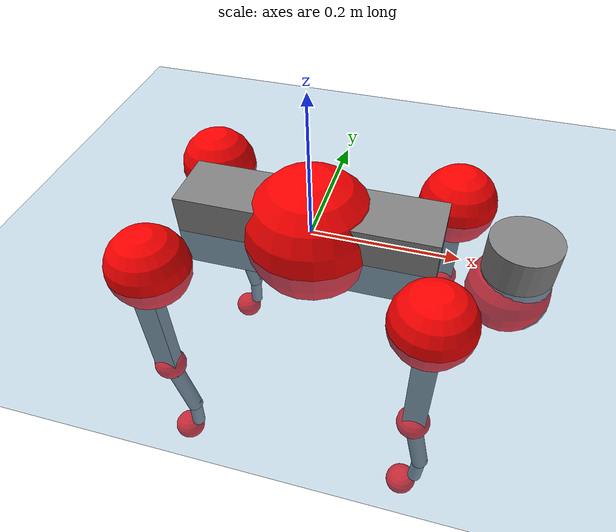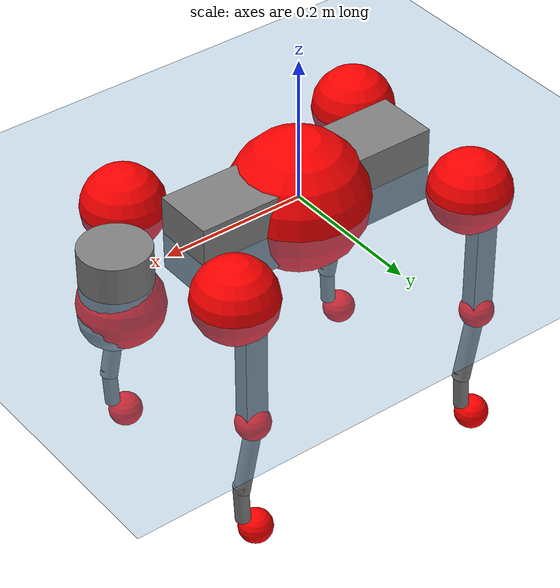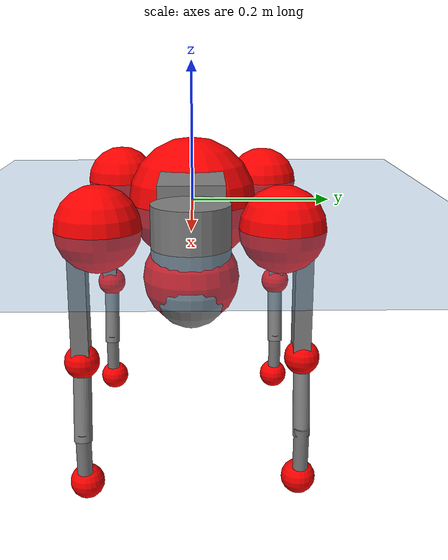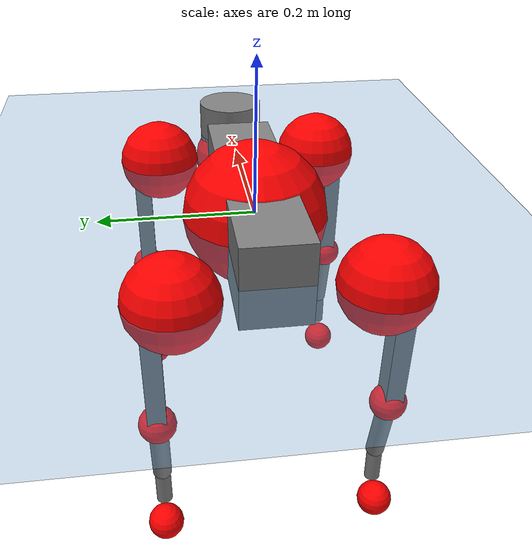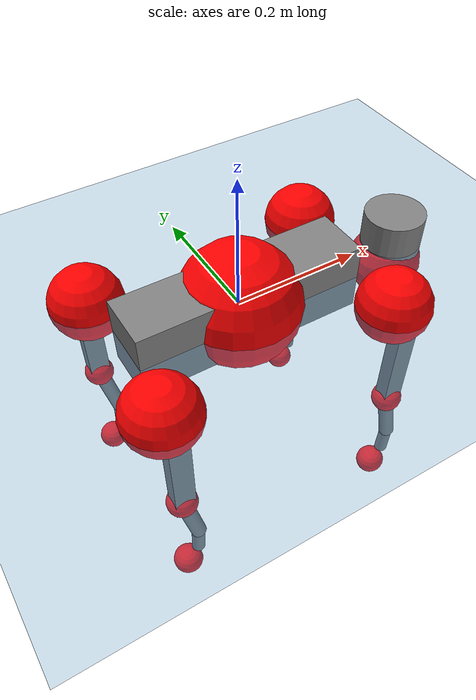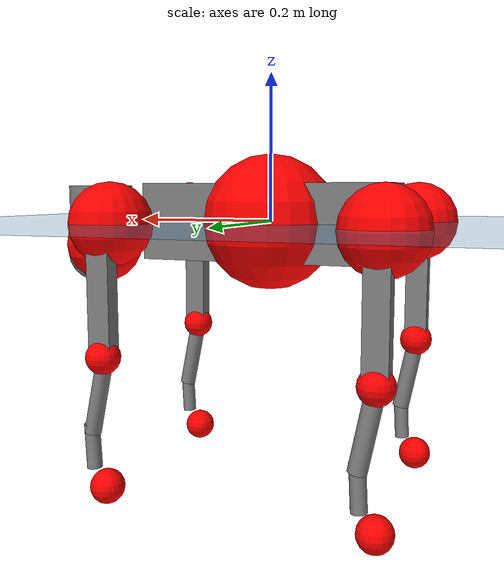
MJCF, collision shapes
<mujoco model="go2">
  <compiler angle="radian" assetdir="assets" balanceinertia="true" inertiafromgeom="false"/>

  <option timestep="0.005" density="1.2" viscosity="2e-05"/>

  <size nkey="1"/>

  <visual>
    <quality shadowsize="8192"/>
    <map shadowclip="0.5"/>
  </visual>

  <default>
    <default class="/">
      <geom contype="0" conaffinity="0" group="1" solref="-1000 -80"/>
      <site size="0.01 0.005 0.005" group="5"/>
      <general forcelimited="true" biastype="affine" gainprm="20" biasprm="0 -20 -0.5"/>
      <default class="go2">
        <joint armature="0.01" damping="0.01" frictionloss="0.2"/>
        <geom condim="1" margin="0.001"/>
        <default class="visual">
          <geom type="mesh" group="2"/>
        </default>
        <default class="collision">
          <geom group="3"/>
          <default class="foot">
            <geom size="0.022 0 0" condim="6" priority="1" friction="0.8 0.02 0.01" solimp="0.015 1 0.022"/>
          </default>
        </default>
        <default class="reward_collision_sphere">
          <geom group="5" rgba="1 0 0 1"/>
        </default>
      </default>
    </default>
  </default>

  <asset>
    <texture type="skybox" colorspace="auto" name="//unnamed_texture_0" builtin="gradient" rgb1="0.95 0.95 0.95" rgb2="0.95 0.95 0.95" width="100" height="600"/>
    <texture type="2d" colorspace="auto" name="texplane" builtin="checker" rgb1="0.345 0.575 0.748" rgb2="0.345 0.575 0.748" markrgb="1 1 1" width="512" height="512"/>
    <material name="MatPlane" class="/" texture="texplane" texuniform="true" texrepeat="2 2" specular="0.9"/>
    <material name="metal" class="/" rgba="0.9 0.95 0.95 1"/>
    <material name="black" class="/" rgba="0 0 0 1"/>
    <material name="white" class="/"/>
    <material name="gray" class="/" rgba="0.671705 0.692426 0.77427 1"/>
    <mesh name="base_0" class="/" file="base_0.obj"/>
    <mesh name="base_1" class="/" file="base_1.obj"/>
    <mesh name="base_2" class="/" file="base_2.obj"/>
    <mesh name="base_3" class="/" file="base_3.obj"/>
    <mesh name="base_4" class="/" file="base_4.obj"/>
    <mesh name="hip_0" class="/" file="hip_0.obj"/>
    <mesh name="hip_1" class="/" file="hip_1.obj"/>
    <mesh name="thigh_0" class="/" file="thigh_0.obj"/>
    <mesh name="thigh_1" class="/" file="thigh_1.obj"/>
    <mesh name="thigh_mirror_0" class="/" file="thigh_mirror_0.obj"/>
    <mesh name="thigh_mirror_1" class="/" file="thigh_mirror_1.obj"/>
    <mesh name="calf_0" class="/" file="calf_0.obj"/>
    <mesh name="calf_1" class="/" file="calf_1.obj"/>
    <mesh name="calf_mirror_0" class="/" file="calf_mirror_0.obj"/>
    <mesh name="calf_mirror_1" class="/" file="calf_mirror_1.obj"/>
    <mesh name="foot" class="/" file="foot.obj"/>
  </asset>

  <worldbody>
    <geom name="floor" class="/" size="100 100 0.125" type="plane" group="0" material="MatPlane"/>
    <light name="toplight_shadow" class="/" pos="0 0 5" dir="0.0990148 0.0990148 -0.990148" type="directional" ambient="0.04 0.04 0.04" diffuse="0.55 0.55 0.55" specular="0.12 0.12 0.12"/>
    <light name="toplight_fill" class="/" pos="0 0 5" dir="0.0990148 0.0990148 -0.990148" type="directional" castshadow="false" ambient="0.04 0.04 0.04" diffuse="0.3 0.3 0.3" specular="0.08 0.08 0.08"/>
    <body name="trunk" childclass="go2" pos="0.00103919 -1.35805e-05 -0.000600002" quat="1 6.00384e-06 3.34819e-05 4.27402e-05">
      <inertial pos="0.0174184 -0.00276581 -0.00431124" quat="-0.00268423 0.716267 -0.00445435 0.697807" mass="5.7909" diaginertia="0.0860822 0.10161 0.00943283"/>
      <joint name="//unnamed_joint_0" type="free" armature="0" damping="0" frictionloss="0"/>
      <geom name="//unnamed_geom_1" class="visual" material="black" mesh="base_0"/>
      <geom name="//unnamed_geom_2" class="visual" material="black" mesh="base_1"/>
      <geom name="//unnamed_geom_3" class="visual" material="black" mesh="base_2"/>
      <geom name="//unnamed_geom_4" class="visual" material="white" mesh="base_3"/>
      <geom name="//unnamed_geom_5" class="visual" material="gray" mesh="base_4"/>
      <geom name="trunk_1" class="collision" size="0.175044 0.0435051 0.0530437" type="box"/>
      <geom name="trunk_2" class="collision" size="0.0465296 0.0418766" pos="0.272782 0 0.0082786" type="cylinder"/>
      <geom name="trunk_3" class="collision" size="0.0437378" pos="0.280439 0 -0.0496716"/>
      <geom name="//unnamed_geom_9" class="reward_collision_sphere" size="0.0930591"/>
      <geom name="//unnamed_geom_10" class="reward_collision_sphere" size="0.0558355" pos="0.267997 0 -0.0372537"/>
      <site name="imu" pos="-0.0109731 0.000651482 0.0215467" size="0.00930591"/>
      <camera name="track" pos="0 -2.01357 0" quat="0.707107 0.707107 0 0" mode="trackcom"/>
      <camera name="ego_camera" pos="0.298625 0 0.0372537" quat="-0.5 -0.5 0.5 0.5"/>
      <body name="FL_hip" pos="0.182104 0.0445327 -0.000988583" quat="1 -0.00020383 0.000225073 0.000255499">
        <inertial pos="-0.00507615 0.0002224 -0.000700238" quat="0.497724 0.499232 0.505347 0.497657" mass="0.53274" diaginertia="0.000687724 0.000578888 0.000181018"/>
        <joint name="FL_hip_joint" pos="0 0 0" axis="0.99999 0.000393197 -0.00444106" range="-1.04909 1.0459" armature="0.00956522" damping="0.00947124" frictionloss="0.17102"/>
        <geom name="//unnamed_geom_11" class="visual" material="metal" mesh="hip_0"/>
        <geom name="//unnamed_geom_12" class="visual" material="gray" mesh="hip_1"/>
        <geom name="//unnamed_geom_13" class="collision" size="0.0428072 0.0186118" pos="0 0.0805427 0" quat="0.707107 0.707107 0 0" type="cylinder"/>
        <geom name="//unnamed_geom_14" class="reward_collision_sphere" size="0.0558355" pos="0 0.0704748 0"/>
        <body name="FL_thigh" pos="-0.00191156 0.098219 0.00221289" quat="0.999999 -0.000724641 -0.000885802 -0.000579515">
          <inertial pos="-0.00349204 -0.0219736 -0.0261453" quat="0.824708 0.0898133 -0.0261982 0.557767" mass="0.905867" diaginertia="0.00476179 0.00583344 0.000337557"/>
          <joint name="FL_thigh_joint" pos="0 0 0" axis="0.00461276 0.999985 -0.00287572" stiffness="0.00700265" range="-1.51603 3.52382" armature="0.00981836" damping="0.0148125" frictionloss="0.176883"/>
          <geom name="//unnamed_geom_15" class="visual" material="metal" mesh="thigh_0"/>
          <geom name="//unnamed_geom_16" class="visual" material="gray" mesh="thigh_1"/>
          <geom name="//unnamed_geom_17" class="collision" size="0.099108 0.0113997 0.0158201" pos="0 0 -0.0881671" quat="0.707107 0 0.707107 0" type="box"/>
          <body name="FL_calf" pos="-0.000147224 0.00163267 -0.175821" quat="1 0.000429853 -2.03019e-05 8.73685e-05">
            <inertial pos="0.00627084 -0.00160473 -0.11718" quat="0.711101 0.00076745 -0.00516668 0.703071" mass="0.195912" diaginertia="0.00117337 0.00153028 2.06248e-05"/>
            <joint name="FL_calf_joint" pos="0 0 0" axis="-0.00633022 0.999933 0.00967175" range="-2.69329 -0.837033" armature="0.00899828" damping="0.00199775" frictionloss="0.186802"/>
            <geom name="//unnamed_geom_18" class="visual" material="gray" mesh="calf_0"/>
            <geom name="//unnamed_geom_19" class="visual" material="black" mesh="calf_1"/>
            <geom name="FL_calf0" class="collision" size="0.0111671 0.0558355" pos="0.00765705 0 -0.0496716" quat="0.994493 0 -0.104807 0" type="cylinder"/>
            <geom name="//unnamed_geom_21" class="collision" size="0.0102365 0.0302442" pos="0.0191426 0 -0.122523" quat="0.999688 0 0.0249974 0" type="cylinder"/>
            <geom name="//unnamed_geom_22" class="visual" pos="0 0 -0.176334" quat="1 0 0 0" material="black" mesh="foot"/>
            <geom name="FL_foot" class="foot" size="0.0164062" pos="-0.00191426 0 -0.176334"/>
            <geom name="//unnamed_geom_24" class="reward_collision_sphere" size="0.0232648"/>
            <geom name="//unnamed_geom_25" class="reward_collision_sphere" size="0.0232648" pos="-0.00191426 0 -0.176334"/>
            <site name="FL_foot" class="foot" pos="-0.00191426 0 -0.176334" size="0.00930591"/>
          </body>
        </body>
      </body>
      <body name="FR_hip" pos="0.182884 -0.0472463 0.000421991" quat="1 1.8345e-05 0.000177075 -5.90434e-05">
        <inertial pos="-0.00626643 -0.00431555 -0.00201904" quat="0.505542 0.499832 0.491564 0.502951" mass="0.539009" diaginertia="0.000682424 0.000630589 0.000179814"/>
        <joint name="FR_hip_joint" pos="0 0 0" axis="0.999902 -0.0130756 -0.00491385" range="-1.06879 1.05669" armature="0.00929733" damping="0" frictionloss="0.18195"/>
        <geom name="//unnamed_geom_26" class="visual" pos="0 1.55871e-09 6.68562e-08" quat="4.63268e-05 1 0 0" material="metal" mesh="hip_0"/>
        <geom name="//unnamed_geom_27" class="visual" pos="0 2.52685e-09 -1.65361e-07" quat="4.63268e-05 1 0 0" material="gray" mesh="hip_1"/>
        <geom name="//unnamed_geom_28" class="collision" size="0.0428072 0.0186118" pos="0 -0.0805427 0" quat="0.707107 0.707107 0 0" type="cylinder"/>
        <geom name="//unnamed_geom_29" class="reward_collision_sphere" size="0.0558355" pos="0 -0.0704748 0"/>
        <body name="FR_thigh" pos="0.0012535 -0.0976568 -0.00216649" quat="0.999999 0.000365868 -0.000961536 -0.000651542">
          <inertial pos="-0.000906836 0.0233429 -0.0280403" quat="0.550096 -0.0232829 0.089153 0.830003" mass="0.966355" diaginertia="0.0047524 0.00592863 0.000357584"/>
          <joint name="FR_thigh_joint" pos="0 0 0" axis="0.00103957 -0.999989 -0.00456597" stiffness="0.00060191" range="-3.5041 1.59236" armature="0.00866532" damping="0.0106263" frictionloss="0.185464"/>
          <geom name="//unnamed_geom_30" class="visual" material="metal" mesh="thigh_mirror_0"/>
          <geom name="//unnamed_geom_31" class="visual" material="gray" mesh="thigh_mirror_1"/>
          <geom name="//unnamed_geom_32" class="collision" size="0.099108 0.0113997 0.0158201" pos="0 0 -0.0881671" quat="0.707107 0 0.707107 0" type="box"/>
          <body name="FR_calf" pos="-0.000934731 0.000150594 -0.175575" quat="1 -0.000168362 0.000214494 0.000508224">
            <inertial pos="0.0038152 0.000739811 -0.117083" quat="0.711096 -0.00426501 0.0095889 0.703017" mass="0.202741" diaginertia="0.00122832 0.00155307 2.11575e-05"/>
            <joint name="FR_calf_joint" pos="0 0 0" axis="0.00576586 -0.999983 0.00125491" range="0.782922 2.69948" armature="0.0105022" damping="0.0208883" frictionloss="0.187426"/>
            <geom name="//unnamed_geom_33" class="visual" material="gray" mesh="calf_mirror_0"/>
            <geom name="//unnamed_geom_34" class="visual" material="black" mesh="calf_mirror_1"/>
            <geom name="FR_calf0" class="collision" size="0.0120977 0.0558355" pos="0.00957131 0 -0.0496716" quat="0.995004 0 -0.0998334 0" type="cylinder"/>
            <geom name="//unnamed_geom_36" class="collision" size="0.0102365 0.0302442" pos="0.0191426 0 -0.122523" quat="0.999688 0 0.0249974 0" type="cylinder"/>
            <geom name="//unnamed_geom_37" class="visual" pos="0 0 -0.176334" quat="1 0 0 0" material="black" mesh="foot"/>
            <geom name="FR_foot" class="foot" size="0.0208329" pos="-0.00191426 0 -0.176334"/>
            <geom name="//unnamed_geom_39" class="reward_collision_sphere" size="0.0232648"/>
            <geom name="//unnamed_geom_40" class="reward_collision_sphere" size="0.0232648" pos="-0.00191426 0 -0.176334"/>
            <site name="FR_foot" class="foot" pos="-0.00191426 0 -0.176334" size="0.00930591"/>
          </body>
        </body>
      </body>
      <body name="RL_hip" pos="-0.182401 0.0457915 -0.00311809" quat="1 2.70346e-05 1.59897e-05 2.05365e-06">
        <inertial pos="0.00486948 0.00400416 -0.00189902" quat="0.498383 0.494972 0.505339 0.501249" mass="0.565268" diaginertia="0.000757394 0.000645848 0.00019108"/>
        <joint name="RL_hip_joint" pos="0 0 0" axis="-0.999935 0.000783674 -0.0114126" range="-1.0492 1.03203" armature="0.00948297" damping="0" frictionloss="0.187108"/>
        <geom name="//unnamed_geom_41" class="visual" pos="-1.12616e-09 0 -2.20753e-07" quat="4.63268e-05 0 1 0" material="metal" mesh="hip_0"/>
        <geom name="//unnamed_geom_42" class="visual" pos="-1.82564e-09 0 -1.95777e-07" quat="4.63268e-05 0 1 0" material="gray" mesh="hip_1"/>
        <geom name="//unnamed_geom_43" class="collision" size="0.0428072 0.0186118" pos="0 0.0805427 0" quat="0.707107 0.707107 0 0" type="cylinder"/>
        <geom name="//unnamed_geom_44" class="reward_collision_sphere" size="0.0558355" pos="0 0.0704748 0"/>
        <body name="RL_thigh" pos="0.000198292 0.0965733 0.000421958" quat="1 -0.000139107 4.86046e-05 -0.000136732">
          <inertial pos="-0.00606922 -0.0228462 -0.0298588" quat="0.829766 0.0844992 -0.0196616 0.551328" mass="0.909086" diaginertia="0.00451389 0.00603772 0.000331965"/>
          <joint name="RL_thigh_joint" pos="0 0 0" axis="-0.00984682 0.999951 -0.000643956" stiffness="0.0149425" range="-0.532665 4.50498" armature="0.00883467" damping="0" frictionloss="0.184042"/>
          <geom name="//unnamed_geom_45" class="visual" material="metal" mesh="thigh_0"/>
          <geom name="//unnamed_geom_46" class="visual" material="gray" mesh="thigh_1"/>
          <geom name="//unnamed_geom_47" class="collision" size="0.099108 0.0113997 0.0158201" pos="0 0 -0.0881671" quat="0.707107 0 0.707107 0" type="box"/>
          <body name="RL_calf" pos="4.17887e-05 -0.000106714 -0.175745" quat="1 -0.000158723 -4.7446e-05 9.89831e-05">
            <inertial pos="0.00652675 0.00212573 -0.116284" quat="0.709638 -0.00473562 -0.00699921 0.704516" mass="0.200212" diaginertia="0.00120925 0.00161243 2.10981e-05"/>
            <joint name="RL_calf_joint" pos="0 0 0" axis="0.00978185 0.999937 -0.00552394" stiffness="0.00232927" range="-2.67098 -0.873772" armature="0.010568" damping="0.0162766" frictionloss="0.163618"/>
            <geom name="//unnamed_geom_48" class="visual" material="gray" mesh="calf_0"/>
            <geom name="//unnamed_geom_49" class="visual" material="black" mesh="calf_1"/>
            <geom name="RL_calf0" class="collision" size="0.0120977 0.0558355" pos="0.00957131 0 -0.0496716" quat="0.995004 0 -0.0998334 0" type="cylinder"/>
            <geom name="//unnamed_geom_51" class="collision" size="0.0102365 0.0302442" pos="0.0191426 0 -0.122523" quat="0.999688 0 0.0249974 0" type="cylinder"/>
            <geom name="//unnamed_geom_52" class="visual" pos="0 0 -0.176334" quat="1 0 0 0" material="black" mesh="foot"/>
            <geom name="RL_foot" class="foot" size="0.0181221" pos="-0.00191426 0 -0.176334"/>
            <geom name="//unnamed_geom_54" class="reward_collision_sphere" size="0.0232648"/>
            <geom name="//unnamed_geom_55" class="reward_collision_sphere" size="0.0232648" pos="-0.00191426 0 -0.176334"/>
            <site name="RL_foot" class="foot" pos="-0.00191426 0 -0.176334" size="0.00930591"/>
          </body>
        </body>
      </body>
      <body name="RR_hip" pos="-0.182558 -0.0479985 -0.000552583" quat="1 0.000235301 0.000362755 0.000201025">
        <inertial pos="0.0039268 -0.00110148 -0.00287861" quat="0.493888 0.504846 0.502731 0.498464" mass="0.544523" diaginertia="0.000687681 0.000596608 0.000179987"/>
        <joint name="RR_hip_joint" pos="0 0 0" axis="-0.999904 0.0119673 0.00694491" stiffness="0.00307323" range="-1.09887 1.05763" armature="0.0093749" damping="0.00270076" frictionloss="0.184707"/>
        <geom name="//unnamed_geom_56" class="visual" pos="1.12788e-09 1.55871e-09 -2.8761e-07" quat="2.14617e-09 4.63268e-05 4.63268e-05 -1" material="metal" mesh="hip_0"/>
        <geom name="//unnamed_geom_57" class="visual" pos="1.82139e-09 2.52685e-09 -3.04158e-08" quat="2.14617e-09 4.63268e-05 4.63268e-05 -1" material="gray" mesh="hip_1"/>
        <geom name="//unnamed_geom_58" class="collision" size="0.0428072 0.0186118" pos="0 -0.0805427 0" quat="0.707107 0.707107 0 0" type="cylinder"/>
        <geom name="//unnamed_geom_59" class="reward_collision_sphere" size="0.0558355" pos="0 -0.0704748 0"/>
        <body name="RR_thigh" pos="0.00272207 -0.0960582 -0.00182941" quat="0.999999 -0.000885072 -3.96073e-05 -0.00076287">
          <inertial pos="-0.0031757 0.0235902 -0.0282148" quat="0.551722 -0.0198425 0.0848263 0.829466" mass="0.888222" diaginertia="0.00457025 0.00592566 0.0003378"/>
          <joint name="RR_thigh_joint" pos="0 0 0" axis="-0.000714135 -0.999996 0.00280331" stiffness="0.00336164" range="-4.51556 0.542873" armature="0.00972519" damping="0.0145533" frictionloss="0.18927"/>
          <geom name="//unnamed_geom_60" class="visual" material="metal" mesh="thigh_mirror_0"/>
          <geom name="//unnamed_geom_61" class="visual" material="gray" mesh="thigh_mirror_1"/>
          <geom name="//unnamed_geom_62" class="collision" size="0.099108 0.0113997 0.0158201" pos="0 0 -0.0881671" quat="0.707107 0 0.707107 0" type="box"/>
          <body name="RR_calf" pos="-0.000254801 0.00214658 -0.175675" quat="0.999999 -0.000528543 0.000867483 0.000798018">
            <inertial pos="0.00816691 0.000514651 -0.118221" quat="0.710655 -0.00611686 -0.00223577 0.70351" mass="0.198345" diaginertia="0.00118497 0.00151565 2.05616e-05"/>
            <joint name="RR_calf_joint" pos="0 0 0" axis="-2.5588e-05 -1 -0.000104636" range="0.830665 2.77916" armature="0.00936582" damping="0.0201405" frictionloss="0.186656"/>
            <geom name="//unnamed_geom_63" class="visual" material="gray" mesh="calf_mirror_0"/>
            <geom name="//unnamed_geom_64" class="visual" material="black" mesh="calf_mirror_1"/>
            <geom name="RR_calf0" class="collision" size="0.0120977 0.0558355" pos="0.00957131 0 -0.0496716" quat="0.995004 0 -0.0998334 0" type="cylinder"/>
            <geom name="//unnamed_geom_66" class="collision" size="0.0102365 0.0302442" pos="0.0191426 0 -0.122523" quat="0.999688 0 0.0249974 0" type="cylinder"/>
            <geom name="//unnamed_geom_67" class="visual" pos="0 0 -0.176334" quat="1 0 0 0" material="black" mesh="foot"/>
            <geom name="RR_foot" class="foot" size="0.0201465" pos="-0.00191426 0 -0.176334"/>
            <geom name="//unnamed_geom_69" class="reward_collision_sphere" size="0.0232648"/>
            <geom name="//unnamed_geom_70" class="reward_collision_sphere" size="0.0232648" pos="-0.00191426 0 -0.176334"/>
            <site name="RR_foot" class="foot" pos="-0.00191426 0 -0.176334" size="0.00930591"/>
          </body>
        </body>
      </body>
    </body>
  </worldbody>

  <contact>
    <pair class="/" geom1="floor" geom2="FL_foot" name="//unnamed_contact_0"/>
    <pair class="/" geom1="floor" geom2="FR_foot" name="//unnamed_contact_1"/>
    <pair class="/" geom1="floor" geom2="RL_foot" name="//unnamed_contact_2"/>
    <pair class="/" geom1="floor" geom2="RR_foot" name="//unnamed_contact_3"/>
  </contact>

  <actuator>
    <general name="FL_hip" class="/" joint="FL_hip_joint" forcerange="-20.1304 20.1304" gainprm="18.2814" biasprm="0 -18.2814 -0.454426"/>
    <general name="FL_thigh" class="/" joint="FL_thigh_joint" forcerange="-19.8366 19.8366" gainprm="18.2814" biasprm="0 -18.2814 -0.454426"/>
    <general name="FL_calf" class="/" joint="FL_calf_joint" forcerange="-43.0206 43.0206" gainprm="18.2814" biasprm="0 -18.2814 -0.454426"/>
    <general name="FR_hip" class="/" joint="FR_hip_joint" forcerange="-22.3547 22.3547" gainprm="18.2814" biasprm="0 -18.2814 -0.454426"/>
    <general name="FR_thigh" class="/" joint="FR_thigh_joint" forcerange="-23.5524 23.5524" gainprm="18.2814" biasprm="0 -18.2814 -0.454426"/>
    <general name="FR_calf" class="/" joint="FR_calf_joint" forcerange="-43.6995 43.6995" gainprm="18.2814" biasprm="0 -18.2814 -0.454426"/>
    <general name="RL_hip" class="/" joint="RL_hip_joint" forcerange="-22.2869 22.2869" gainprm="18.2814" biasprm="0 -18.2814 -0.454426"/>
    <general name="RL_thigh" class="/" joint="RL_thigh_joint" forcerange="-20.4605 20.4605" gainprm="18.2814" biasprm="0 -18.2814 -0.454426"/>
    <general name="RL_calf" class="/" joint="RL_calf_joint" forcerange="-41.6339 41.6339" gainprm="18.2814" biasprm="0 -18.2814 -0.454426"/>
    <general name="RR_hip" class="/" joint="RR_hip_joint" forcerange="-22.5517 22.5517" gainprm="18.2814" biasprm="0 -18.2814 -0.454426"/>
    <general name="RR_thigh" class="/" joint="RR_thigh_joint" forcerange="-24.1618 24.1618" gainprm="18.2814" biasprm="0 -18.2814 -0.454426"/>
    <general name="RR_calf" class="/" joint="RR_calf_joint" forcerange="-40.6476 40.6476" gainprm="18.2814" biasprm="0 -18.2814 -0.454426"/>
  </actuator>

  <sensor>
    <gyro site="imu" name="imu_angular_velocity"/>
    <velocimeter site="imu" name="imu_linear_velocity"/>
    <framelinvel objtype="site" objname="FL_foot" name="FL_foot_global_linear_velocity"/>
    <framelinvel objtype="site" objname="FR_foot" name="FR_foot_global_linear_velocity"/>
    <framelinvel objtype="site" objname="RL_foot" name="RL_foot_global_linear_velocity"/>
    <framelinvel objtype="site" objname="RR_foot" name="RR_foot_global_linear_velocity"/>
  </sensor>

  <keyframe>
    <key name="home" qpos="0 0 0.325 1 0 0 0 0.1 0.8 -1.5 -0.1 -0.8 1.5 -0.1 0.8 -1.5 0.1 -0.8 1.5"/>
  </keyframe>
</mujoco>
